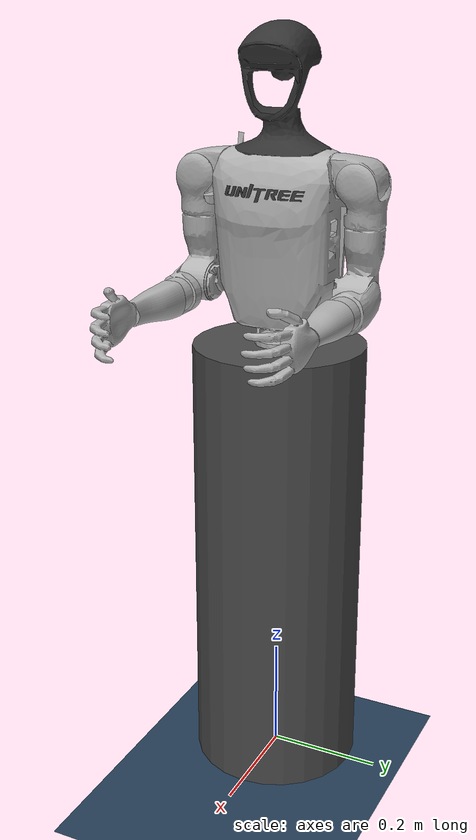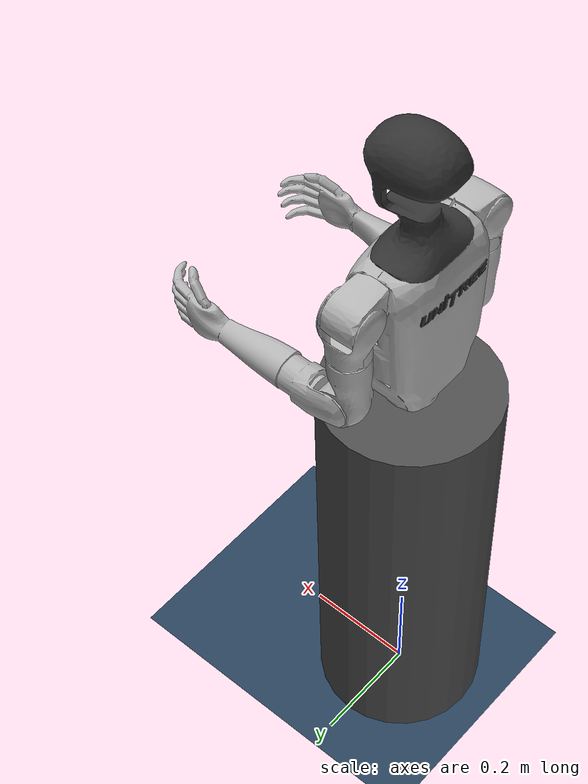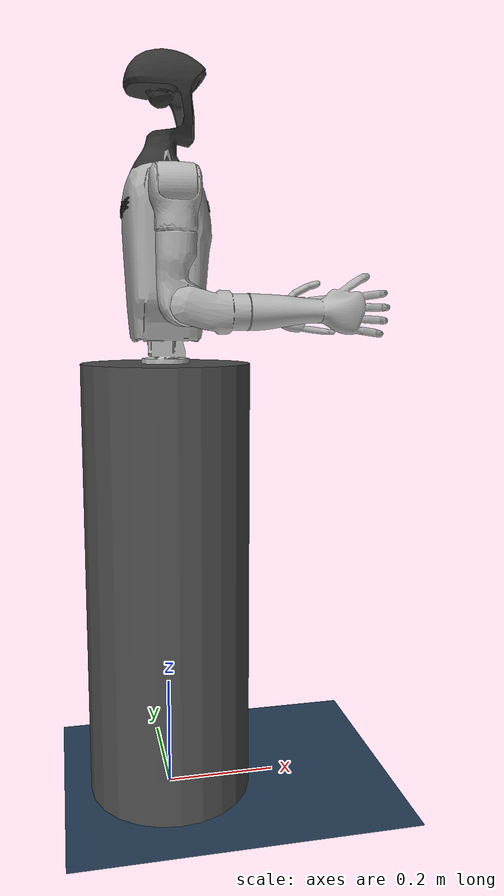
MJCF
<mujoco model="g1 no legs">
  <include file="g1_nolegs.xml"/>
  <statistic center="0 0 0.8" extent="1.5"/>
  <visual>
    <headlight diffuse="0.6 0.6 0.6" ambient="0.3 0.3 0.3" specular="0 0 0"/>
    <rgba haze="0.15 0.25 0.35 1"/>
    <global azimuth="-130" elevation="-15"/>
  </visual>
  <asset>
    <texture type="skybox" builtin="gradient" rgb1="0.3 0.5 0.7" rgb2="0 0 0" width="512" height="3072"/>
    <texture type="2d" name="groundplane" builtin="checker" mark="edge" rgb1="0.2 0.3 0.4" rgb2="0.1 0.2 0.3"
      markrgb="0.8 0.8 0.8" width="300" height="300"/>
    <material name="groundplane" texture="groundplane" texuniform="true" texrepeat="5 5" reflectance="0.2"/>
  </asset>
  <worldbody>
    <light pos="0 0 3" dir="0 0 -1" directional="true"/>
    <geom name="floor" size="0 0 0.05" type="plane" material="groundplane"/>
    <!-- Support stand to hold the legless torso -->
    <body name="stand" pos="0 0 0.4">
      <geom type="cylinder" size="0.15 0.4" rgba="0.3 0.3 0.3 1"/>
    </body>
  </worldbody>
</mujoco>

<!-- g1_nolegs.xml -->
<mujoco model="g1_12dof">
    <compiler angle="radian" meshdir="meshes/" />
    <statistic meansize="0.144785" extent="1.23314" center="0.025392 2.0634e-05 -0.245975" />
    <default>
        <joint damping="0.001" armature="0.01" frictionloss="0.1" />
    </default>
    <asset>
        <mesh name="pelvis" file="pelvis.STL" />
        <mesh name="pelvis_contour_link" file="pelvis_contour_link.STL" />
        <mesh name="left_hip_pitch_link" file="left_hip_pitch_link.STL" />
        <mesh name="left_hip_roll_link" file="left_hip_roll_link.STL" />
        <mesh name="left_hip_yaw_link" file="left_hip_yaw_link.STL" />
        <mesh name="left_knee_link" file="left_knee_link.STL" />
        <mesh name="left_ankle_pitch_link" file="left_ankle_pitch_link.STL" />
        <mesh name="left_ankle_roll_link" file="left_ankle_roll_link.STL" />
        <mesh name="right_hip_pitch_link" file="right_hip_pitch_link.STL" />
        <mesh name="right_hip_roll_link" file="right_hip_roll_link.STL" />
        <mesh name="right_hip_yaw_link" file="right_hip_yaw_link.STL" />
        <mesh name="right_knee_link" file="right_knee_link.STL" />
        <mesh name="right_ankle_pitch_link" file="right_ankle_pitch_link.STL" />
        <mesh name="right_ankle_roll_link" file="right_ankle_roll_link.STL" />
        <mesh name="torso_link_23dof_rev_1_0" file="torso_link_23dof_rev_1_0.STL" />
        <mesh name="logo_link" file="logo_link.STL" />
        <mesh name="head_link" file="head_link.STL" />
        <mesh name="left_shoulder_pitch_link" file="left_shoulder_pitch_link.STL" />
        <mesh name="left_shoulder_roll_link" file="left_shoulder_roll_link.STL" />
        <mesh name="left_shoulder_yaw_link" file="left_shoulder_yaw_link.STL" />
        <mesh name="left_elbow_link" file="left_elbow_link.STL" />
        <mesh name="left_wrist_roll_rubber_hand" file="left_wrist_roll_rubber_hand.STL" />
        <mesh name="right_shoulder_pitch_link" file="right_shoulder_pitch_link.STL" />
        <mesh name="right_shoulder_roll_link" file="right_shoulder_roll_link.STL" />
        <mesh name="right_shoulder_yaw_link" file="right_shoulder_yaw_link.STL" />
        <mesh name="right_elbow_link" file="right_elbow_link.STL" />
        <mesh name="right_wrist_roll_rubber_hand" file="right_wrist_roll_rubber_hand.STL" />
    </asset>
    <worldbody>
        <body name="pelvis" pos="0 0 0.793">
            <inertial pos="0.0144905 0.000151462 0.144068" quat="0.999881 -0.000505543 -0.0154276 0.000328408" mass="17.7349" diaginertia="0.552723 0.454092 0.211762" />
            <joint name="floating_base_joint" type="free" limited="false" actuatorfrclimited="false" />
            <geom type="mesh" contype="0" conaffinity="0" group="1" density="0" rgba="0.2 0.2 0.2 1" mesh="pelvis" />
            <geom type="mesh" contype="0" conaffinity="0" group="1" density="0" rgba="0.7 0.7 0.7 1" mesh="pelvis_contour_link" />
            <geom type="mesh" rgba="0.7 0.7 0.7 1" mesh="pelvis_contour_link" />
            <geom type="mesh" contype="0" conaffinity="0" group="1" density="0" rgba="0.7 0.7 0.7 1" mesh="torso_link_23dof_rev_1_0" />
            <geom type="mesh" rgba="0.7 0.7 0.7 1" mesh="torso_link_23dof_rev_1_0" />
            <geom type="mesh" contype="0" conaffinity="0" group="1" density="0" rgba="0.2 0.2 0.2 1" mesh="logo_link" />
            <geom type="mesh" rgba="0.2 0.2 0.2 1" mesh="logo_link" />
            <geom type="mesh" contype="0" conaffinity="0" group="1" density="0" rgba="0.2 0.2 0.2 1" mesh="head_link" />
            <geom type="mesh" rgba="0.2 0.2 0.2 1" mesh="head_link" />
            <geom pos="-7.2e-06 0.10022 0.29178" quat="0.990264 0.139201 1.38722e-05 -9.86868e-05" type="mesh" contype="0" conaffinity="0" group="1" density="0" rgba="0.7 0.7 0.7 1" mesh="left_shoulder_pitch_link" />
            <geom size="0.03 0.025" pos="7.72569e-07 0.141427 0.293195" quat="0.700213 0.0985001 0.700232 0.0983605" type="cylinder" rgba="0.7 0.7 0.7 1" />
            <geom pos="3.73942e-07 0.14056 0.288961" quat="1 3.00026e-05 2.74716e-05 -9.57958e-05" type="mesh" contype="0" conaffinity="0" group="1" density="0" rgba="0.7 0.7 0.7 1" mesh="left_shoulder_roll_link" />
            <geom size="0.03 0.015" pos="-0.00400139 0.146564 0.235962" quat="1 3.00026e-05 2.74716e-05 -9.57958e-05" type="cylinder" rgba="0.7 0.7 0.7 1" />
            <geom pos="-4.10007e-06 0.146807 0.185762" quat="1 3.00026e-05 2.74716e-05 -9.57958e-05" type="mesh" contype="0" conaffinity="0" group="1" density="0" rgba="0.7 0.7 0.7 1" mesh="left_shoulder_yaw_link" />
            <geom pos="-4.10007e-06 0.146807 0.185762" quat="1 3.00026e-05 2.74716e-05 -9.57958e-05" type="mesh" rgba="0.7 0.7 0.7 1" mesh="left_shoulder_yaw_link" />
            <geom pos="0.0157745 0.146808 0.105243" quat="1 3.00026e-05 2.74716e-05 -9.57958e-05" type="mesh" contype="0" conaffinity="0" group="1" density="0" rgba="0.7 0.7 0.7 1" mesh="left_elbow_link" />
            <geom pos="0.0157745 0.146808 0.105243" quat="1 3.00026e-05 2.74716e-05 -9.57958e-05" type="mesh" rgba="0.7 0.7 0.7 1" mesh="left_elbow_link" />
            <geom pos="0.115774 0.148678 0.0952374" quat="1 3.00026e-05 2.74716e-05 -9.57958e-05" type="mesh" contype="0" conaffinity="0" group="1" density="0" rgba="0.7 0.7 0.7 1" mesh="left_wrist_roll_rubber_hand" />
            <geom pos="0.115774 0.148678 0.0952374" quat="1 3.00026e-05 2.74716e-05 -9.57958e-05" type="mesh" rgba="0.7 0.7 0.7 1" mesh="left_wrist_roll_rubber_hand" />
            <geom pos="-7.2e-06 -0.10021 0.29178" quat="0.990264 -0.139201 1.38722e-05 9.86868e-05" type="mesh" contype="0" conaffinity="0" group="1" density="0" rgba="0.7 0.7 0.7 1" mesh="right_shoulder_pitch_link" />
            <geom size="0.03 0.025" pos="7.72569e-07 -0.141417 0.293195" quat="0.700213 -0.0985001 0.700232 -0.0983605" type="cylinder" rgba="0.7 0.7 0.7 1" />
            <geom pos="3.73942e-07 -0.14055 0.288961" quat="1 -3.00026e-05 2.74716e-05 9.57958e-05" type="mesh" contype="0" conaffinity="0" group="1" density="0" rgba="0.7 0.7 0.7 1" mesh="right_shoulder_roll_link" />
            <geom size="0.03 0.015" pos="-0.00400139 -0.146554 0.235962" quat="1 -3.00026e-05 2.74716e-05 9.57958e-05" type="cylinder" rgba="0.7 0.7 0.7 1" />
            <geom pos="-4.10007e-06 -0.146797 0.185762" quat="1 -3.00026e-05 2.74716e-05 9.57958e-05" type="mesh" contype="0" conaffinity="0" group="1" density="0" rgba="0.7 0.7 0.7 1" mesh="right_shoulder_yaw_link" />
            <geom pos="-4.10007e-06 -0.146797 0.185762" quat="1 -3.00026e-05 2.74716e-05 9.57958e-05" type="mesh" rgba="0.7 0.7 0.7 1" mesh="right_shoulder_yaw_link" />
            <geom pos="0.0157745 -0.146798 0.105243" quat="1 -3.00026e-05 2.74716e-05 9.57958e-05" type="mesh" contype="0" conaffinity="0" group="1" density="0" rgba="0.7 0.7 0.7 1" mesh="right_elbow_link" />
            <geom pos="0.0157745 -0.146798 0.105243" quat="1 -3.00026e-05 2.74716e-05 9.57958e-05" type="mesh" rgba="0.7 0.7 0.7 1" mesh="right_elbow_link" />
            <geom pos="0.115774 -0.148668 0.0952374" quat="1 -3.00026e-05 2.74716e-05 9.57958e-05" type="mesh" contype="0" conaffinity="0" group="1" density="0" rgba="0.7 0.7 0.7 1" mesh="right_wrist_roll_rubber_hand" />
            <geom pos="0.115774 -0.148668 0.0952374" quat="1 -3.00026e-05 2.74716e-05 9.57958e-05" type="mesh" rgba="0.7 0.7 0.7 1" mesh="right_wrist_roll_rubber_hand" />
        </body>
    </worldbody>
</mujoco>
